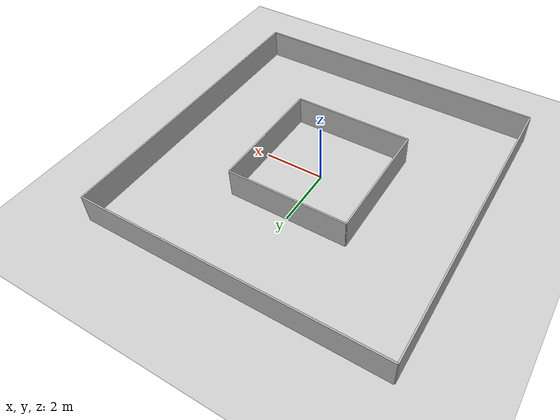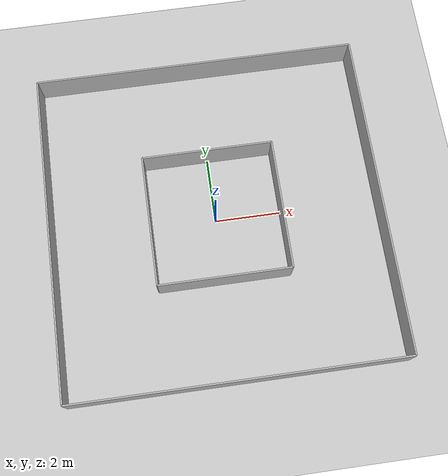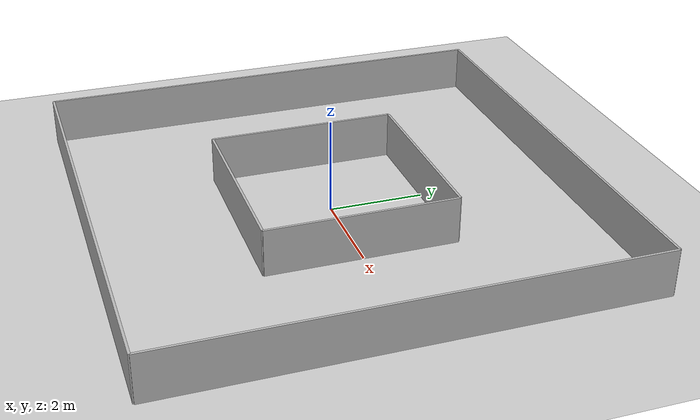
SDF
<sdf version="1.7">
 <world name="test_world">
  <physics name="1ms" type="ignored">
   <max_step_size>0.001</max_step_size>
   <real_time_factor>1.0</real_time_factor>
  </physics>
  <plugin filename="gz-sim-physics-system" name="gz::sim::systems::Physics"/>
  <plugin filename="gz-sim-user-commands-system" name="gz::sim::systems::UserCommands"/>
  <plugin filename="gz-sim-scene-broadcaster-system" name="gz::sim::systems::SceneBroadcaster"/>
  <plugin filename="gz-sim-imu-system" name="gz::sim::systems::Imu"/>
  <plugin filename="gz-sim-sensors-system" name="gz::sim::systems::Sensors">
   <render_engine>ogre2</render_engine>
  </plugin>
  <light name="sun" type="directional">
   <pose>0 0 10 0 -0 0</pose>
   <diffuse>0.8 0.8 0.8 1</diffuse>
   <specular>0.2 0.2 0.2 1</specular>
   <attenuation>
    <range>1000</range>
    <constant>0.9</constant>
    <linear>0.01</linear>
    <quadratic>0.001</quadratic>
   </attenuation>
   <direction>-0.5 0.1 -0.9</direction>
   <spot><inner_angle>0</inner_angle><outer_angle>0</outer_angle><falloff>0</falloff></spot>
  </light>
  <model name="ground_plane">
   <static>1</static>
   <link name="link">
    <collision name="collision">
     <geometry><plane><normal>0 0 1</normal><size>100 100</size></plane></geometry>
     <surface><friction><ode><mu>100</mu><mu2>50</mu2></ode></friction></surface>
    </collision>
    <visual name="visual">
     <cast_shadows>0</cast_shadows>
     <geometry><plane><normal>0 0 1</normal><size>100 100</size></plane></geometry>
     <material>
      <script><uri>file://media/materials/scripts/gazebo.material</uri><name>Gazebo/Grey</name></script>
     </material>
    </visual>
   </link>
  </model>
  <gravity>0 0 -9.8</gravity>
  <magnetic_field>6e-06 2.3e-05 -4.2e-05</magnetic_field>
  <atmosphere type="adiabatic"/>
  <physics type="ode">
   <max_step_size>0.001</max_step_size>
   <real_time_factor>1</real_time_factor>
   <real_time_update_rate>1000</real_time_update_rate>
  </physics>
  <scene><ambient>0.4 0.4 0.4 1</ambient><background>0.7 0.7 0.7 1</background><shadows>1</shadows></scene>
  <spherical_coordinates>
   <surface_model>EARTH_WGS84</surface_model>
   <latitude_deg>0</latitude_deg>
   <longitude_deg>0</longitude_deg>
   <elevation>0</elevation>
   <heading_deg>0</heading_deg>
  </spherical_coordinates>
  <model name="wall_north">
   <pose>0 5 0.5 0 0 0</pose>
   <static>true</static>
   <link name="link">
    <collision name="collision"><geometry><box><size>10 0.05 1</size></box></geometry></collision>
    <visual name="visual"><geometry><box><size>10 0.05 1</size></box></geometry></visual>
   </link>
  </model>
  <model name="wall_south">
   <pose>0 -5 0.5 0 0 0</pose>
   <static>true</static>
   <link name="link">
    <collision name="collision"><geometry><box><size>10 0.05 1</size></box></geometry></collision>
    <visual name="visual"><geometry><box><size>10 0.05 1</size></box></geometry></visual>
   </link>
  </model>
  <model name="wall_east">
   <pose>5 0 0.5 0 0 0</pose>
   <static>true</static>
   <link name="link">
    <collision name="collision"><geometry><box><size>0.05 10 1</size></box></geometry></collision>
    <visual name="visual"><geometry><box><size>0.05 10 1</size></box></geometry></visual>
   </link>
  </model>
  <model name="wall_west">
   <pose>-5 0 0.5 0 0 0</pose>
   <static>true</static>
   <link name="link">
    <collision name="collision"><geometry><box><size>0.05 10 1</size></box></geometry></collision>
    <visual name="visual"><geometry><box><size>0.05 10 1</size></box></geometry></visual>
   </link>
  </model>
  <model name="inner_wall_north">
   <pose>0 2 0.5 0 0 0</pose>
   <static>true</static>
   <link name="link">
    <collision name="collision"><geometry><box><size>4 0.05 1</size></box></geometry></collision>
    <visual name="visual"><geometry><box><size>4 0.05 1</size></box></geometry></visual>
   </link>
  </model>
  <model name="inner_wall_south">
   <pose>0 -2 0.5 0 0 0</pose>
   <static>true</static>
   <link name="link">
    <collision name="collision"><geometry><box><size>4 0.05 1</size></box></geometry></collision>
    <visual name="visual"><geometry><box><size>4 0.05 1</size></box></geometry></visual>
   </link>
  </model>
  <model name="inner_wall_east">
   <pose>2 0 0.5 0 0 0</pose>
   <static>true</static>
   <link name="link">
    <collision name="collision"><geometry><box><size>0.05 4 1</size></box></geometry></collision>
    <visual name="visual"><geometry><box><size>0.05 4 1</size></box></geometry></visual>
   </link>
  </model>
  <model name="inner_wall_west">
   <pose>-2 0 0.5 0 0 0</pose>
   <static>true</static>
   <link name="link">
    <collision name="collision"><geometry><box><size>0.05 4 1</size></box></geometry></collision>
    <visual name="visual"><geometry><box><size>0.05 4 1</size></box></geometry></visual>
   </link>
  </model>
 </world>
</sdf>
